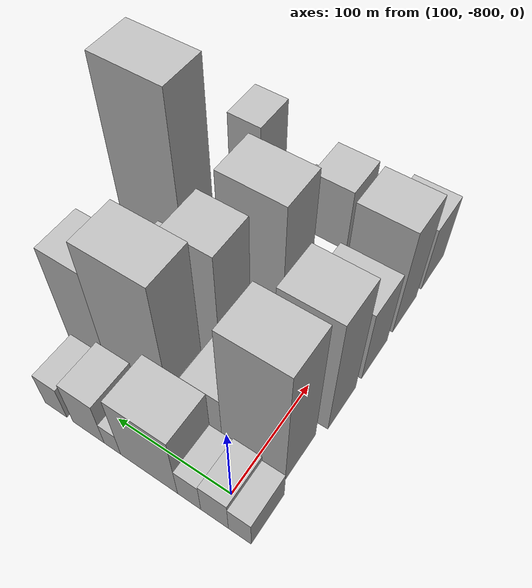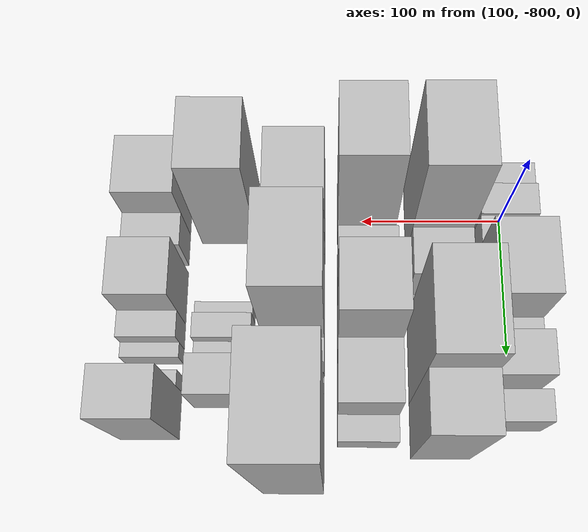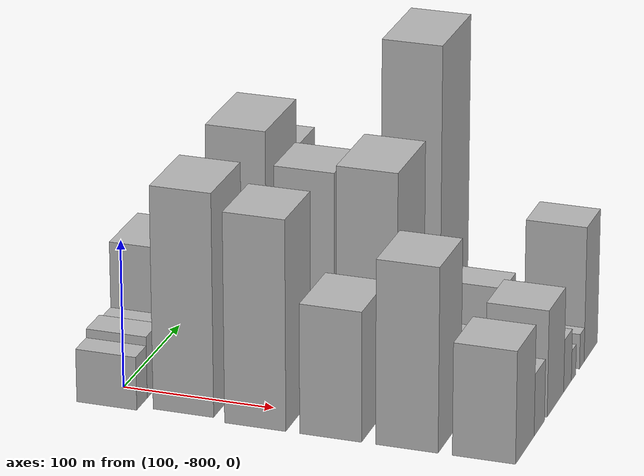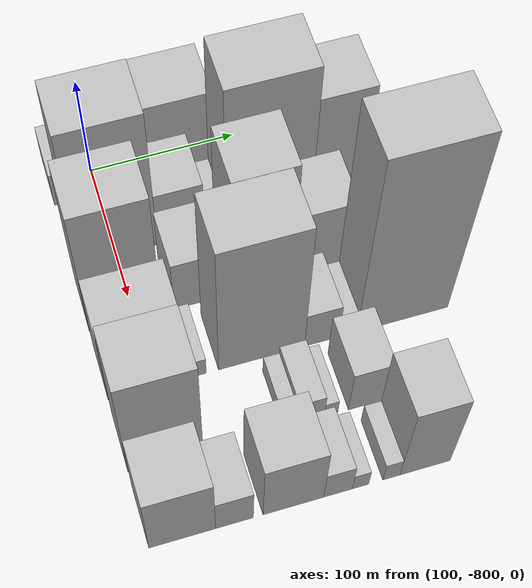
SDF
<sdf version="1.6">
 <world name="default">
  <model name="building_1">
   <static>1</static>
   <pose>100.0000 -820.8194 0 0.000000 0.000000 0.000000</pose>
   <link name="link">
    <pose>0 0 18.00 0 0 0</pose>
    <collision name="collision"><geometry><box><size>40.0000 18.3613 36.0000</size></box></geometry></collision>
    <visual name="visual">
     <cast_shadows>0</cast_shadows>
     <geometry><box><size>40.0000 18.3613 36.0000</size></box></geometry>
     <material>
      <script>
       <uri>model://HANNAS_wall/materials/scripts</uri>
       <uri>model://HANNAS_wall/materials/textures</uri>
       <name>vrc/HANNAS_wall</name>
      </script>
     </material>
    </visual>
   </link>
  </model>
  <model name="building_2">
   <static>1</static>
   <pose>100.0000 -800.2883 0 0.000000 0.000000 0.000000</pose>
   <link name="link">
    <pose>0 0 21.00 0 0 0</pose>
    <collision name="collision"><geometry><box><size>40.0000 22.7009 42.0000</size></box></geometry></collision>
    <visual name="visual">
     <cast_shadows>0</cast_shadows>
     <geometry><box><size>40.0000 22.7009 42.0000</size></box></geometry>
     <material>
      <script>
       <uri>model://HANNAS_wall/materials/scripts</uri>
       <uri>model://HANNAS_wall/materials/textures</uri>
       <name>vrc/HANNAS_wall</name>
      </script>
     </material>
    </visual>
   </link>
  </model>
  <model name="building_3">
   <static>1</static>
   <pose>100.0000 -779.1160 0 0.000000 0.000000 0.000000</pose>
   <link name="link">
    <pose>0 0 19.50 0 0 0</pose>
    <collision name="collision"><geometry><box><size>40.0000 19.6437 39.0000</size></box></geometry></collision>
    <visual name="visual">
     <cast_shadows>0</cast_shadows>
     <geometry><box><size>40.0000 19.6437 39.0000</size></box></geometry>
     <material>
      <script>
       <uri>model://HANNAS_wall/materials/scripts</uri>
       <uri>model://HANNAS_wall/materials/textures</uri>
       <name>vrc/HANNAS_wall</name>
      </script>
     </material>
    </visual>
   </link>
  </model>
  <model name="building_4">
   <static>1</static>
   <pose>100.0000 -744.1241 0 0.000000 0.000000 0.000000</pose>
   <link name="link">
    <pose>0 0 42.00 0 0 0</pose>
    <collision name="collision"><geometry><box><size>40.0000 50.3401 84.0000</size></box></geometry></collision>
    <visual name="visual">
     <cast_shadows>0</cast_shadows>
     <geometry><box><size>40.0000 50.3401 84.0000</size></box></geometry>
     <material>
      <script>
       <uri>model://HANNAS_wall/materials/scripts</uri>
       <uri>model://HANNAS_wall/materials/textures</uri>
       <name>vrc/HANNAS_wall</name>
      </script>
     </material>
    </visual>
   </link>
  </model>
  <model name="building_5">
   <static>1</static>
   <pose>100.0000 -711.3848 0 0.000000 0.000000 0.000000</pose>
   <link name="link">
    <pose>0 0 15.00 0 0 0</pose>
    <collision name="collision"><geometry><box><size>40.0000 15.1385 30.0000</size></box></geometry></collision>
    <visual name="visual">
     <cast_shadows>0</cast_shadows>
     <geometry><box><size>40.0000 15.1385 30.0000</size></box></geometry>
     <material>
      <script>
       <uri>model://HANNAS_wall/materials/scripts</uri>
       <uri>model://HANNAS_wall/materials/textures</uri>
       <name>vrc/HANNAS_wall</name>
      </script>
     </material>
    </visual>
   </link>
  </model>
  <model name="building_6">
   <static>1</static>
   <pose>100.0000 -689.0686 0 0.000000 0.000000 0.000000</pose>
   <link name="link">
    <pose>0 0 28.50 0 0 0</pose>
    <collision name="collision"><geometry><box><size>40.0000 29.4938 57.0000</size></box></geometry></collision>
    <visual name="visual">
     <cast_shadows>0</cast_shadows>
     <geometry><box><size>40.0000 29.4938 57.0000</size></box></geometry>
     <material>
      <script>
       <uri>model://HANNAS_wall/materials/scripts</uri>
       <uri>model://HANNAS_wall/materials/textures</uri>
       <name>vrc/HANNAS_wall</name>
      </script>
     </material>
    </visual>
   </link>
  </model>
  <model name="building_7">
   <static>1</static>
   <pose>100.0000 -657.7556 0 0.000000 0.000000 0.000000</pose>
   <link name="link">
    <pose>0 0 21.00 0 0 0</pose>
    <collision name="collision"><geometry><box><size>40.0000 21.1322 42.0000</size></box></geometry></collision>
    <visual name="visual">
     <cast_shadows>0</cast_shadows>
     <geometry><box><size>40.0000 21.1322 42.0000</size></box></geometry>
     <material>
      <script>
       <uri>model://HANNAS_wall/materials/scripts</uri>
       <uri>model://HANNAS_wall/materials/textures</uri>
       <name>vrc/HANNAS_wall</name>
      </script>
     </material>
    </visual>
   </link>
  </model>
  <model name="building_55">
   <static>1</static>
   <pose>149.0000 -798.3148 0 0.000000 0.000000 0.000000</pose>
   <link name="link">
    <pose>0 0 75.00 0 0 0</pose>
    <collision name="collision"><geometry><box><size>40.0000 53.3705 150.0000</size></box></geometry></collision>
    <visual name="visual">
     <cast_shadows>0</cast_shadows>
     <geometry><box><size>40.0000 53.3705 150.0000</size></box></geometry>
     <material>
      <script>
       <uri>model://HANNAS_wall/materials/scripts</uri>
       <uri>model://HANNAS_wall/materials/textures</uri>
       <name>vrc/HANNAS_wall</name>
      </script>
     </material>
    </visual>
   </link>
  </model>
  <model name="building_56">
   <static>1</static>
   <pose>149.0000 -755.5750 0 0.000000 0.000000 0.000000</pose>
   <link name="link">
    <pose>0 0 30.00 0 0 0</pose>
    <collision name="collision"><geometry><box><size>40.0000 32.1091 60.0000</size></box></geometry></collision>
    <visual name="visual">
     <cast_shadows>0</cast_shadows>
     <geometry><box><size>40.0000 32.1091 60.0000</size></box></geometry>
     <material>
      <script>
       <uri>model://HANNAS_wall/materials/scripts</uri>
       <uri>model://HANNAS_wall/materials/textures</uri>
       <name>vrc/HANNAS_wall</name>
      </script>
     </material>
    </visual>
   </link>
  </model>
  <model name="building_57">
   <static>1</static>
   <pose>149.0000 -730.8483 0 0.000000 0.000000 0.000000</pose>
   <link name="link">
    <pose>0 0 12.00 0 0 0</pose>
    <collision name="collision"><geometry><box><size>40.0000 11.3441 24.0000</size></box></geometry></collision>
    <visual name="visual">
     <cast_shadows>0</cast_shadows>
     <geometry><box><size>40.0000 11.3441 24.0000</size></box></geometry>
     <material>
      <script>
       <uri>model://HANNAS_wall/materials/scripts</uri>
       <uri>model://HANNAS_wall/materials/textures</uri>
       <name>vrc/HANNAS_wall</name>
      </script>
     </material>
    </visual>
   </link>
  </model>
  <model name="building_58">
   <static>1</static>
   <pose>149.0000 -695.2119 0 0.000000 0.000000 0.000000</pose>
   <link name="link">
    <pose>0 0 76.50 0 0 0</pose>
    <collision name="collision"><geometry><box><size>40.0000 59.9288 153.0000</size></box></geometry></collision>
    <visual name="visual">
     <cast_shadows>0</cast_shadows>
     <geometry><box><size>40.0000 59.9288 153.0000</size></box></geometry>
     <material>
      <script>
       <uri>model://HANNAS_wall/materials/scripts</uri>
       <uri>model://HANNAS_wall/materials/textures</uri>
       <name>vrc/HANNAS_wall</name>
      </script>
     </material>
    </visual>
   </link>
  </model>
  <model name="building_59">
   <static>1</static>
   <pose>149.0000 -646.7721 0 0.000000 0.000000 0.000000</pose>
   <link name="link">
    <pose>0 0 60.00 0 0 0</pose>
    <collision name="collision"><geometry><box><size>40.0000 36.9507 120.0000</size></box></geometry></collision>
    <visual name="visual">
     <cast_shadows>0</cast_shadows>
     <geometry><box><size>40.0000 36.9507 120.0000</size></box></geometry>
     <material>
      <script>
       <uri>model://HANNAS_wall/materials/scripts</uri>
       <uri>model://HANNAS_wall/materials/textures</uri>
       <name>vrc/HANNAS_wall</name>
      </script>
     </material>
    </visual>
   </link>
  </model>
  <model name="building_97">
   <static>1</static>
   <pose>198.0000 -806.0535 0 0.000000 0.000000 0.000000</pose>
   <link name="link">
    <pose>0 0 70.50 0 0 0</pose>
    <collision name="collision"><geometry><box><size>40.0000 47.8929 141.0000</size></box></geometry></collision>
    <visual name="visual">
     <cast_shadows>0</cast_shadows>
     <geometry><box><size>40.0000 47.8929 141.0000</size></box></geometry>
     <material>
      <script>
       <uri>model://HANNAS_wall/materials/scripts</uri>
       <uri>model://HANNAS_wall/materials/textures</uri>
       <name>vrc/HANNAS_wall</name>
      </script>
     </material>
    </visual>
   </link>
  </model>
  <model name="building_98">
   <static>1</static>
   <pose>198.0000 -758.1448 0 0.000000 0.000000 0.000000</pose>
   <link name="link">
    <pose>0 0 28.50 0 0 0</pose>
    <collision name="collision"><geometry><box><size>40.0000 31.9245 57.0000</size></box></geometry></collision>
    <visual name="visual">
     <cast_shadows>0</cast_shadows>
     <geometry><box><size>40.0000 31.9245 57.0000</size></box></geometry>
     <material>
      <script>
       <uri>model://HANNAS_wall/materials/scripts</uri>
       <uri>model://HANNAS_wall/materials/textures</uri>
       <name>vrc/HANNAS_wall</name>
      </script>
     </material>
    </visual>
   </link>
  </model>
  <model name="building_99">
   <static>1</static>
   <pose>198.0000 -738.7940 0 0.000000 0.000000 0.000000</pose>
   <link name="link">
    <pose>0 0 7.50 0 0 0</pose>
    <collision name="collision"><geometry><box><size>40.0000 6.7772 15.0000</size></box></geometry></collision>
    <visual name="visual">
     <cast_shadows>0</cast_shadows>
     <geometry><box><size>40.0000 6.7772 15.0000</size></box></geometry>
     <material>
      <script>
       <uri>model://HANNAS_wall/materials/scripts</uri>
       <uri>model://HANNAS_wall/materials/textures</uri>
       <name>vrc/HANNAS_wall</name>
      </script>
     </material>
    </visual>
   </link>
  </model>
  <model name="building_100">
   <static>1</static>
   <pose>198.0000 -714.4344 0 0.000000 0.000000 0.000000</pose>
   <link name="link">
    <pose>0 0 67.50 0 0 0</pose>
    <collision name="collision"><geometry><box><size>40.0000 41.9421 135.0000</size></box></geometry></collision>
    <visual name="visual">
     <cast_shadows>0</cast_shadows>
     <geometry><box><size>40.0000 41.9421 135.0000</size></box></geometry>
     <material>
      <script>
       <uri>model://HANNAS_wall/materials/scripts</uri>
       <uri>model://HANNAS_wall/materials/textures</uri>
       <name>vrc/HANNAS_wall</name>
      </script>
     </material>
    </visual>
   </link>
  </model>
  <model name="building_101">
   <static>1</static>
   <pose>198.0000 -673.4860 0 0.000000 0.000000 0.000000</pose>
   <link name="link">
    <pose>0 0 37.50 0 0 0</pose>
    <collision name="collision"><geometry><box><size>40.0000 39.9545 75.0000</size></box></geometry></collision>
    <visual name="visual">
     <cast_shadows>0</cast_shadows>
     <geometry><box><size>40.0000 39.9545 75.0000</size></box></geometry>
     <material>
      <script>
       <uri>model://HANNAS_wall/materials/scripts</uri>
       <uri>model://HANNAS_wall/materials/textures</uri>
       <name>vrc/HANNAS_wall</name>
      </script>
     </material>
    </visual>
   </link>
  </model>
  <model name="building_102">
   <static>1</static>
   <pose>198.0000 -644.7059 0 0.000000 0.000000 0.000000</pose>
   <link name="link">
    <pose>0 0 15.00 0 0 0</pose>
    <collision name="collision"><geometry><box><size>40.0000 17.6058 30.0000</size></box></geometry></collision>
    <visual name="visual">
     <cast_shadows>0</cast_shadows>
     <geometry><box><size>40.0000 17.6058 30.0000</size></box></geometry>
     <material>
      <script>
       <uri>model://HANNAS_wall/materials/scripts</uri>
       <uri>model://HANNAS_wall/materials/textures</uri>
       <name>vrc/HANNAS_wall</name>
      </script>
     </material>
    </visual>
   </link>
  </model>
  <model name="building_148">
   <static>1</static>
   <pose>247.0000 -804.7533 0 0.000000 0.000000 0.000000</pose>
   <link name="link">
    <pose>0 0 43.50 0 0 0</pose>
    <collision name="collision"><geometry><box><size>40.0000 50.4935 87.0000</size></box></geometry></collision>
    <visual name="visual">
     <cast_shadows>0</cast_shadows>
     <geometry><box><size>40.0000 50.4935 87.0000</size></box></geometry>
     <material>
      <script>
       <uri>model://HANNAS_wall/materials/scripts</uri>
       <uri>model://HANNAS_wall/materials/textures</uri>
       <name>vrc/HANNAS_wall</name>
      </script>
     </material>
    </visual>
   </link>
  </model>
  <model name="building_149">
   <static>1</static>
   <pose>247.0000 -771.5574 0 0.000000 0.000000 0.000000</pose>
   <link name="link">
    <pose>0 0 10.50 0 0 0</pose>
    <collision name="collision"><geometry><box><size>40.0000 9.8982 21.0000</size></box></geometry></collision>
    <visual name="visual">
     <cast_shadows>0</cast_shadows>
     <geometry><box><size>40.0000 9.8982 21.0000</size></box></geometry>
     <material>
      <script>
       <uri>model://HANNAS_wall/materials/scripts</uri>
       <uri>model://HANNAS_wall/materials/textures</uri>
       <name>vrc/HANNAS_wall</name>
      </script>
     </material>
    </visual>
   </link>
  </model>
  <model name="building_150">
   <static>1</static>
   <pose>247.0000 -730.2399 0 0.000000 0.000000 0.000000</pose>
   <link name="link">
    <pose>0 0 75.00 0 0 0</pose>
    <collision name="collision"><geometry><box><size>40.0000 56.7368 150.0000</size></box></geometry></collision>
    <visual name="visual">
     <cast_shadows>0</cast_shadows>
     <geometry><box><size>40.0000 56.7368 150.0000</size></box></geometry>
     <material>
      <script>
       <uri>model://HANNAS_wall/materials/scripts</uri>
       <uri>model://HANNAS_wall/materials/textures</uri>
       <name>vrc/HANNAS_wall</name>
      </script>
     </material>
    </visual>
   </link>
  </model>
  <model name="building_151">
   <static>1</static>
   <pose>247.0000 -690.3157 0 0.000000 0.000000 0.000000</pose>
   <link name="link">
    <pose>0 0 21.00 0 0 0</pose>
    <collision name="collision"><geometry><box><size>40.0000 23.1117 42.0000</size></box></geometry></collision>
    <visual name="visual">
     <cast_shadows>0</cast_shadows>
     <geometry><box><size>40.0000 23.1117 42.0000</size></box></geometry>
     <material>
      <script>
       <uri>model://HANNAS_wall/materials/scripts</uri>
       <uri>model://HANNAS_wall/materials/textures</uri>
       <name>vrc/HANNAS_wall</name>
      </script>
     </material>
    </visual>
   </link>
  </model>
  <model name="building_152">
   <static>1</static>
   <pose>247.0000 -672.7619 0 0.000000 0.000000 0.000000</pose>
   <link name="link">
    <pose>0 0 12.00 0 0 0</pose>
    <collision name="collision"><geometry><box><size>40.0000 11.9960 24.0000</size></box></geometry></collision>
    <visual name="visual">
     <cast_shadows>0</cast_shadows>
     <geometry><box><size>40.0000 11.9960 24.0000</size></box></geometry>
     <material>
      <script>
       <uri>model://HANNAS_wall/materials/scripts</uri>
       <uri>model://HANNAS_wall/materials/textures</uri>
       <name>vrc/HANNAS_wall</name>
      </script>
     </material>
    </visual>
   </link>
  </model>
  <model name="building_153">
   <static>1</static>
   <pose>247.0000 -635.9545 0 0.000000 0.000000 0.000000</pose>
   <link name="link">
    <pose>0 0 100.50 0 0 0</pose>
    <collision name="collision"><geometry><box><size>40.0000 61.6188 201.0000</size></box></geometry></collision>
    <visual name="visual">
     <cast_shadows>0</cast_shadows>
     <geometry><box><size>40.0000 61.6188 201.0000</size></box></geometry>
     <material>
      <script>
       <uri>model://HANNAS_wall/materials/scripts</uri>
       <uri>model://HANNAS_wall/materials/textures</uri>
       <name>vrc/HANNAS_wall</name>
      </script>
     </material>
    </visual>
   </link>
  </model>
  <model name="building_195">
   <static>1</static>
   <pose>296.0000 -806.3328 0 0.000000 0.000000 0.000000</pose>
   <link name="link">
    <pose>0 0 61.50 0 0 0</pose>
    <collision name="collision"><geometry><box><size>40.0000 47.3344 123.0000</size></box></geometry></collision>
    <visual name="visual">
     <cast_shadows>0</cast_shadows>
     <geometry><box><size>40.0000 47.3344 123.0000</size></box></geometry>
     <material>
      <script>
       <uri>model://HANNAS_wall/materials/scripts</uri>
       <uri>model://HANNAS_wall/materials/textures</uri>
       <name>vrc/HANNAS_wall</name>
      </script>
     </material>
    </visual>
   </link>
  </model>
  <model name="building_196">
   <static>1</static>
   <pose>296.0000 -727.1356 0 0.000000 0.000000 0.000000</pose>
   <link name="link">
    <pose>0 0 10.50 0 0 0</pose>
    <collision name="collision"><geometry><box><size>40.0000 10.3534 21.0000</size></box></geometry></collision>
    <visual name="visual">
     <cast_shadows>0</cast_shadows>
     <geometry><box><size>40.0000 10.3534 21.0000</size></box></geometry>
     <material>
      <script>
       <uri>model://HANNAS_wall/materials/scripts</uri>
       <uri>model://HANNAS_wall/materials/textures</uri>
       <name>vrc/HANNAS_wall</name>
      </script>
     </material>
    </visual>
   </link>
  </model>
  <model name="building_197">
   <static>1</static>
   <pose>296.0000 -713.4287 0 0.000000 0.000000 0.000000</pose>
   <link name="link">
    <pose>0 0 15.00 0 0 0</pose>
    <collision name="collision"><geometry><box><size>40.0000 17.0604 30.0000</size></box></geometry></collision>
    <visual name="visual">
     <cast_shadows>0</cast_shadows>
     <geometry><box><size>40.0000 17.0604 30.0000</size></box></geometry>
     <material>
      <script>
       <uri>model://HANNAS_wall/materials/scripts</uri>
       <uri>model://HANNAS_wall/materials/textures</uri>
       <name>vrc/HANNAS_wall</name>
      </script>
     </material>
    </visual>
   </link>
  </model>
  <model name="building_198">
   <static>1</static>
   <pose>296.0000 -700.5576 0 0.000000 0.000000 0.000000</pose>
   <link name="link">
    <pose>0 0 9.00 0 0 0</pose>
    <collision name="collision"><geometry><box><size>40.0000 8.6819 18.0000</size></box></geometry></collision>
    <visual name="visual">
     <cast_shadows>0</cast_shadows>
     <geometry><box><size>40.0000 8.6819 18.0000</size></box></geometry>
     <material>
      <script>
       <uri>model://HANNAS_wall/materials/scripts</uri>
       <uri>model://HANNAS_wall/materials/textures</uri>
       <name>vrc/HANNAS_wall</name>
      </script>
     </material>
    </visual>
   </link>
  </model>
  <model name="building_199">
   <static>1</static>
   <pose>296.0000 -675.9183 0 0.000000 0.000000 0.000000</pose>
   <link name="link">
    <pose>0 0 25.50 0 0 0</pose>
    <collision name="collision"><geometry><box><size>40.0000 26.5966 51.0000</size></box></geometry></collision>
    <visual name="visual">
     <cast_shadows>0</cast_shadows>
     <geometry><box><size>40.0000 26.5966 51.0000</size></box></geometry>
     <material>
      <script>
       <uri>model://HANNAS_wall/materials/scripts</uri>
       <uri>model://HANNAS_wall/materials/textures</uri>
       <name>vrc/HANNAS_wall</name>
      </script>
     </material>
    </visual>
   </link>
  </model>
  <model name="building_240">
   <static>1</static>
   <pose>345.0000 -809.5345 0 0.000000 0.000000 0.000000</pose>
   <link name="link">
    <pose>0 0 37.50 0 0 0</pose>
    <collision name="collision"><geometry><box><size>40.0000 40.9310 75.0000</size></box></geometry></collision>
    <visual name="visual">
     <cast_shadows>0</cast_shadows>
     <geometry><box><size>40.0000 40.9310 75.0000</size></box></geometry>
     <material>
      <script>
       <uri>model://HANNAS_wall/materials/scripts</uri>
       <uri>model://HANNAS_wall/materials/textures</uri>
       <name>vrc/HANNAS_wall</name>
      </script>
     </material>
    </visual>
   </link>
  </model>
  <model name="building_241">
   <static>1</static>
   <pose>345.0000 -777.3941 0 0.000000 0.000000 0.000000</pose>
   <link name="link">
    <pose>0 0 21.00 0 0 0</pose>
    <collision name="collision"><geometry><box><size>40.0000 23.3498 42.0000</size></box></geometry></collision>
    <visual name="visual">
     <cast_shadows>0</cast_shadows>
     <geometry><box><size>40.0000 23.3498 42.0000</size></box></geometry>
     <material>
      <script>
       <uri>model://HANNAS_wall/materials/scripts</uri>
       <uri>model://HANNAS_wall/materials/textures</uri>
       <name>vrc/HANNAS_wall</name>
      </script>
     </material>
    </visual>
   </link>
  </model>
  <model name="building_242">
   <static>1</static>
   <pose>345.0000 -740.6537 0 0.000000 0.000000 0.000000</pose>
   <link name="link">
    <pose>0 0 36.00 0 0 0</pose>
    <collision name="collision"><geometry><box><size>40.0000 38.1309 72.0000</size></box></geometry></collision>
    <visual name="visual">
     <cast_shadows>0</cast_shadows>
     <geometry><box><size>40.0000 38.1309 72.0000</size></box></geometry>
     <material>
      <script>
       <uri>model://HANNAS_wall/materials/scripts</uri>
       <uri>model://HANNAS_wall/materials/textures</uri>
       <name>vrc/HANNAS_wall</name>
      </script>
     </material>
    </visual>
   </link>
  </model>
  <model name="building_243">
   <static>1</static>
   <pose>345.0000 -712.5260 0 0.000000 0.000000 0.000000</pose>
   <link name="link">
    <pose>0 0 18.00 0 0 0</pose>
    <collision name="collision"><geometry><box><size>40.0000 18.1247 36.0000</size></box></geometry></collision>
    <visual name="visual">
     <cast_shadows>0</cast_shadows>
     <geometry><box><size>40.0000 18.1247 36.0000</size></box></geometry>
     <material>
      <script>
       <uri>model://HANNAS_wall/materials/scripts</uri>
       <uri>model://HANNAS_wall/materials/textures</uri>
       <name>vrc/HANNAS_wall</name>
      </script>
     </material>
    </visual>
   </link>
  </model>
  <model name="building_244">
   <static>1</static>
   <pose>345.0000 -698.2707 0 0.000000 0.000000 0.000000</pose>
   <link name="link">
    <pose>0 0 10.50 0 0 0</pose>
    <collision name="collision"><geometry><box><size>40.0000 10.3859 21.0000</size></box></geometry></collision>
    <visual name="visual">
     <cast_shadows>0</cast_shadows>
     <geometry><box><size>40.0000 10.3859 21.0000</size></box></geometry>
     <material>
      <script>
       <uri>model://HANNAS_wall/materials/scripts</uri>
       <uri>model://HANNAS_wall/materials/textures</uri>
       <name>vrc/HANNAS_wall</name>
      </script>
     </material>
    </visual>
   </link>
  </model>
  <model name="building_245">
   <static>1</static>
   <pose>345.0000 -678.6069 0 0.000000 0.000000 0.000000</pose>
   <link name="link">
    <pose>0 0 12.00 0 0 0</pose>
    <collision name="collision"><geometry><box><size>40.0000 10.9417 24.0000</size></box></geometry></collision>
    <visual name="visual">
     <cast_shadows>0</cast_shadows>
     <geometry><box><size>40.0000 10.9417 24.0000</size></box></geometry>
     <material>
      <script>
       <uri>model://HANNAS_wall/materials/scripts</uri>
       <uri>model://HANNAS_wall/materials/textures</uri>
       <name>vrc/HANNAS_wall</name>
      </script>
     </material>
    </visual>
   </link>
  </model>
  <model name="building_246">
   <static>1</static>
   <pose>345.0000 -656.9819 0 0.000000 0.000000 0.000000</pose>
   <link name="link">
    <pose>0 0 46.50 0 0 0</pose>
    <collision name="collision"><geometry><box><size>40.0000 32.3084 93.0000</size></box></geometry></collision>
    <visual name="visual">
     <cast_shadows>0</cast_shadows>
     <geometry><box><size>40.0000 32.3084 93.0000</size></box></geometry>
     <material>
      <script>
       <uri>model://HANNAS_wall/materials/scripts</uri>
       <uri>model://HANNAS_wall/materials/textures</uri>
       <name>vrc/HANNAS_wall</name>
      </script>
     </material>
    </visual>
   </link>
  </model>
 </world>
</sdf>
